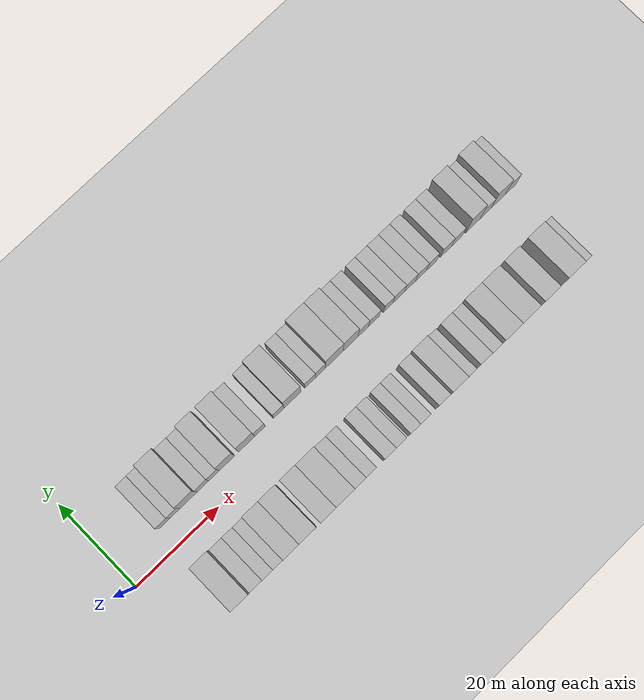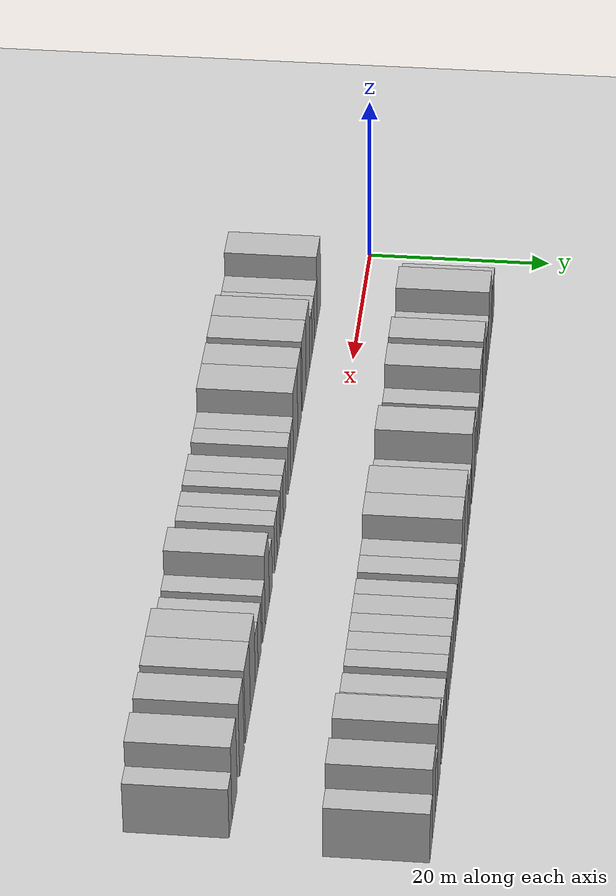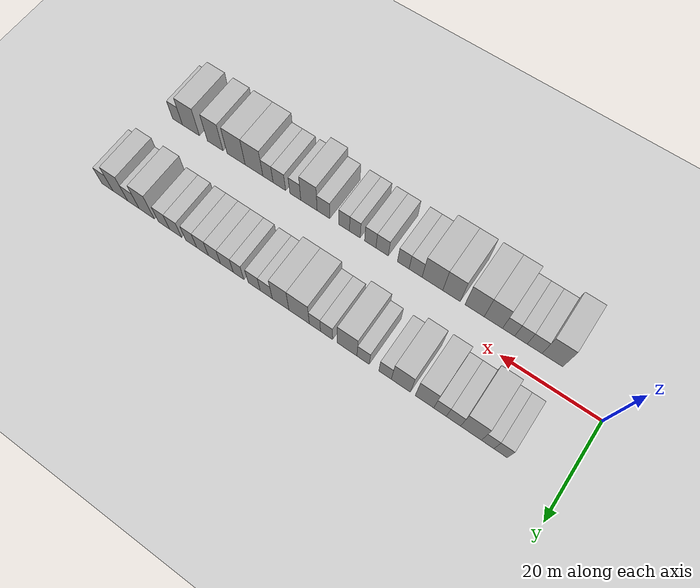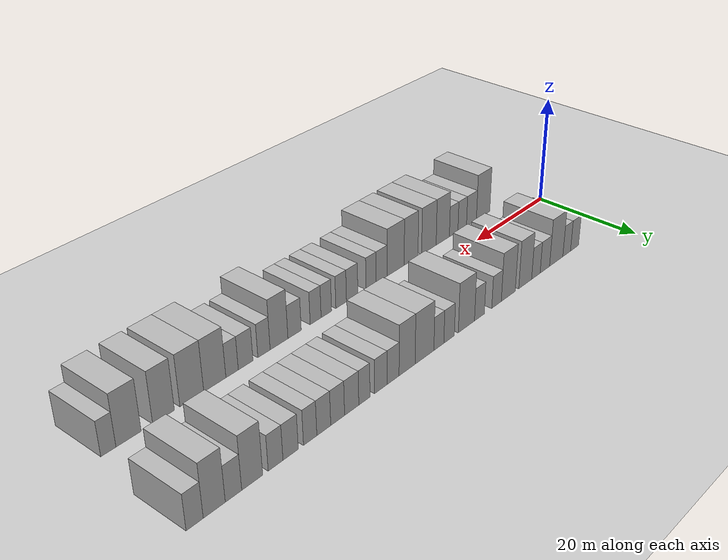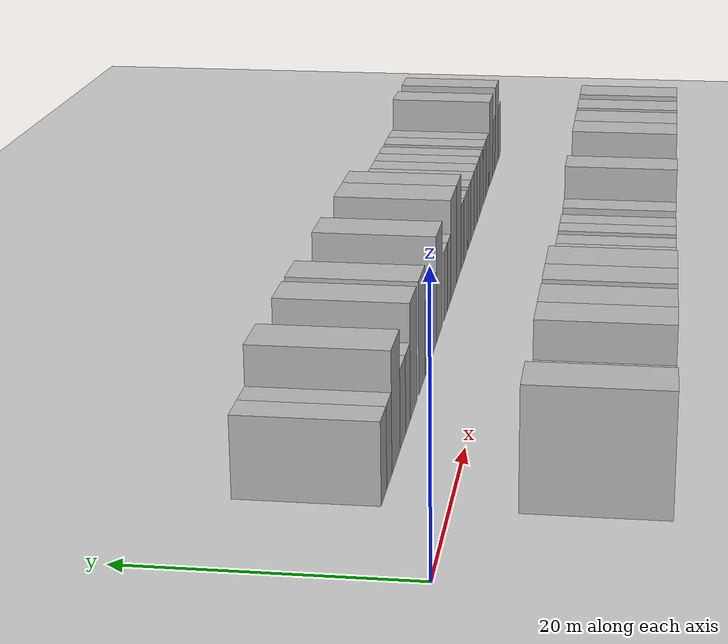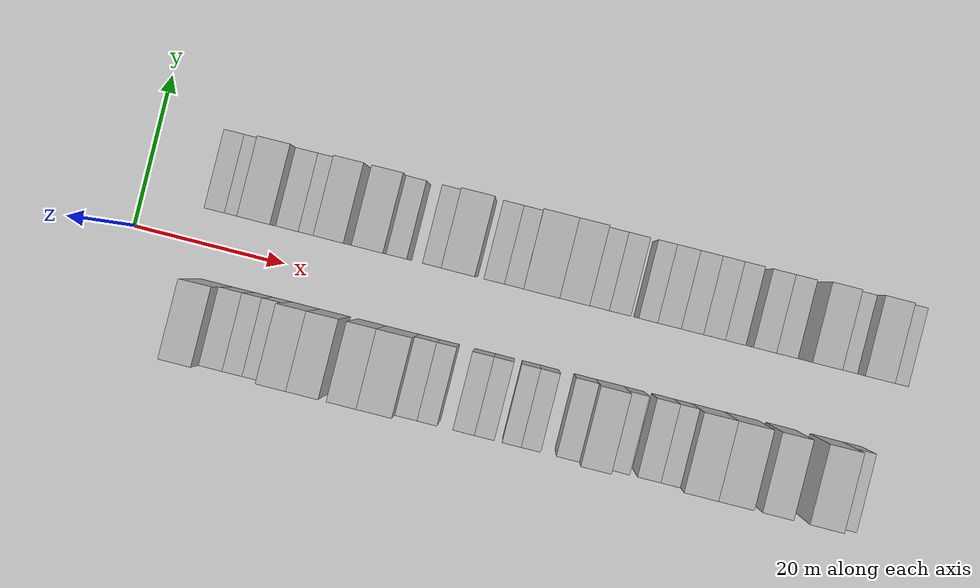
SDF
<sdf version="1.6">
 <world name="default">
  <include><name>ground_plane_1</name><uri>model://HANNAS_ground_plane</uri></include>
  <model name="building_1">
   <static>1</static>
   <pose>11.2882 9.5000 0 0.000000 0.000000 1.570796</pose>
   <link name="link">
    <pose>0 0 3.00 0 0 0</pose>
    <collision name="collision"><geometry><box><size>10.0000 2.5765 6.0000</size></box></geometry></collision>
    <visual name="visual">
     <cast_shadows>0</cast_shadows>
     <geometry><box><size>10.0000 2.5765 6.0000</size></box></geometry>
     <material>
      <script>
       <uri>model://HANNAS_wall/materials/scripts</uri>
       <uri>model://HANNAS_wall/materials/textures</uri>
       <name>vrc/HANNAS_wall</name>
      </script>
     </material>
    </visual>
   </link>
  </model>
  <model name="building_2">
   <static>1</static>
   <pose>13.7909 9.5000 0 0.000000 0.000000 1.570796</pose>
   <link name="link">
    <pose>0 0 3.00 0 0 0</pose>
    <collision name="collision"><geometry><box><size>10.0000 2.4288 6.0000</size></box></geometry></collision>
    <visual name="visual">
     <cast_shadows>0</cast_shadows>
     <geometry><box><size>10.0000 2.4288 6.0000</size></box></geometry>
     <material>
      <script>
       <uri>model://HANNAS_wall/materials/scripts</uri>
       <uri>model://HANNAS_wall/materials/textures</uri>
       <name>vrc/HANNAS_wall</name>
      </script>
     </material>
    </visual>
   </link>
  </model>
  <model name="building_3">
   <static>1</static>
   <pose>17.0592 9.5000 0 0.000000 0.000000 1.570796</pose>
   <link name="link">
    <pose>0 0 4.50 0 0 0</pose>
    <collision name="collision"><geometry><box><size>10.0000 4.1080 9.0000</size></box></geometry></collision>
    <visual name="visual">
     <cast_shadows>0</cast_shadows>
     <geometry><box><size>10.0000 4.1080 9.0000</size></box></geometry>
     <material>
      <script>
       <uri>model://HANNAS_wall/materials/scripts</uri>
       <uri>model://HANNAS_wall/materials/textures</uri>
       <name>vrc/HANNAS_wall</name>
      </script>
     </material>
    </visual>
   </link>
  </model>
  <model name="building_4">
   <static>1</static>
   <pose>20.5396 9.5000 0 0.000000 0.000000 1.570796</pose>
   <link name="link">
    <pose>0 0 3.00 0 0 0</pose>
    <collision name="collision"><geometry><box><size>10.0000 2.8527 6.0000</size></box></geometry></collision>
    <visual name="visual">
     <cast_shadows>0</cast_shadows>
     <geometry><box><size>10.0000 2.8527 6.0000</size></box></geometry>
     <material>
      <script>
       <uri>model://HANNAS_wall/materials/scripts</uri>
       <uri>model://HANNAS_wall/materials/textures</uri>
       <name>vrc/HANNAS_wall</name>
      </script>
     </material>
    </visual>
   </link>
  </model>
  <model name="building_5">
   <static>1</static>
   <pose>23.2264 9.5000 0 0.000000 0.000000 1.570796</pose>
   <link name="link">
    <pose>0 0 3.00 0 0 0</pose>
    <collision name="collision"><geometry><box><size>10.0000 2.5211 6.0000</size></box></geometry></collision>
    <visual name="visual">
     <cast_shadows>0</cast_shadows>
     <geometry><box><size>10.0000 2.5211 6.0000</size></box></geometry>
     <material>
      <script>
       <uri>model://HANNAS_wall/materials/scripts</uri>
       <uri>model://HANNAS_wall/materials/textures</uri>
       <name>vrc/HANNAS_wall</name>
      </script>
     </material>
    </visual>
   </link>
  </model>
  <model name="building_6">
   <static>1</static>
   <pose>26.3644 9.5000 0 0.000000 0.000000 1.570796</pose>
   <link name="link">
    <pose>0 0 4.50 0 0 0</pose>
    <collision name="collision"><geometry><box><size>10.0000 3.7548 9.0000</size></box></geometry></collision>
    <visual name="visual">
     <cast_shadows>0</cast_shadows>
     <geometry><box><size>10.0000 3.7548 9.0000</size></box></geometry>
     <material>
      <script>
       <uri>model://HANNAS_wall/materials/scripts</uri>
       <uri>model://HANNAS_wall/materials/textures</uri>
       <name>vrc/HANNAS_wall</name>
      </script>
     </material>
    </visual>
   </link>
  </model>
  <model name="building_7">
   <static>1</static>
   <pose>31.1983 9.5000 0 0.000000 0.000000 1.570796</pose>
   <link name="link">
    <pose>0 0 4.50 0 0 0</pose>
    <collision name="collision"><geometry><box><size>10.0000 3.9130 9.0000</size></box></geometry></collision>
    <visual name="visual">
     <cast_shadows>0</cast_shadows>
     <geometry><box><size>10.0000 3.9130 9.0000</size></box></geometry>
     <material>
      <script>
       <uri>model://HANNAS_wall/materials/scripts</uri>
       <uri>model://HANNAS_wall/materials/textures</uri>
       <name>vrc/HANNAS_wall</name>
      </script>
     </material>
    </visual>
   </link>
  </model>
  <model name="building_8">
   <static>1</static>
   <pose>34.4615 9.5000 0 0.000000 0.000000 1.570796</pose>
   <link name="link">
    <pose>0 0 3.00 0 0 0</pose>
    <collision name="collision"><geometry><box><size>10.0000 2.6134 6.0000</size></box></geometry></collision>
    <visual name="visual">
     <cast_shadows>0</cast_shadows>
     <geometry><box><size>10.0000 2.6134 6.0000</size></box></geometry>
     <material>
      <script>
       <uri>model://HANNAS_wall/materials/scripts</uri>
       <uri>model://HANNAS_wall/materials/textures</uri>
       <name>vrc/HANNAS_wall</name>
      </script>
     </material>
    </visual>
   </link>
  </model>
  <model name="building_9">
   <static>1</static>
   <pose>39.0749 9.5000 0 0.000000 0.000000 1.570796</pose>
   <link name="link">
    <pose>0 0 3.00 0 0 0</pose>
    <collision name="collision"><geometry><box><size>10.0000 2.6134 6.0000</size></box></geometry></collision>
    <visual name="visual">
     <cast_shadows>0</cast_shadows>
     <geometry><box><size>10.0000 2.6134 6.0000</size></box></geometry>
     <material>
      <script>
       <uri>model://HANNAS_wall/materials/scripts</uri>
       <uri>model://HANNAS_wall/materials/textures</uri>
       <name>vrc/HANNAS_wall</name>
      </script>
     </material>
    </visual>
   </link>
  </model>
  <model name="building_10">
   <static>1</static>
   <pose>42.4751 9.5000 0 0.000000 0.000000 1.570796</pose>
   <link name="link">
    <pose>0 0 4.50 0 0 0</pose>
    <collision name="collision"><geometry><box><size>10.0000 4.1871 9.0000</size></box></geometry></collision>
    <visual name="visual">
     <cast_shadows>0</cast_shadows>
     <geometry><box><size>10.0000 4.1871 9.0000</size></box></geometry>
     <material>
      <script>
       <uri>model://HANNAS_wall/materials/scripts</uri>
       <uri>model://HANNAS_wall/materials/textures</uri>
       <name>vrc/HANNAS_wall</name>
      </script>
     </material>
    </visual>
   </link>
  </model>
  <model name="building_11">
   <static>1</static>
   <pose>46.8850 9.5000 0 0.000000 0.000000 1.570796</pose>
   <link name="link">
    <pose>0 0 3.00 0 0 0</pose>
    <collision name="collision"><geometry><box><size>10.0000 2.6326 6.0000</size></box></geometry></collision>
    <visual name="visual">
     <cast_shadows>0</cast_shadows>
     <geometry><box><size>10.0000 2.6326 6.0000</size></box></geometry>
     <material>
      <script>
       <uri>model://HANNAS_wall/materials/scripts</uri>
       <uri>model://HANNAS_wall/materials/textures</uri>
       <name>vrc/HANNAS_wall</name>
      </script>
     </material>
    </visual>
   </link>
  </model>
  <model name="building_12">
   <static>1</static>
   <pose>49.4207 9.5000 0 0.000000 0.000000 1.570796</pose>
   <link name="link">
    <pose>0 0 3.00 0 0 0</pose>
    <collision name="collision"><geometry><box><size>10.0000 2.4388 6.0000</size></box></geometry></collision>
    <visual name="visual">
     <cast_shadows>0</cast_shadows>
     <geometry><box><size>10.0000 2.4388 6.0000</size></box></geometry>
     <material>
      <script>
       <uri>model://HANNAS_wall/materials/scripts</uri>
       <uri>model://HANNAS_wall/materials/textures</uri>
       <name>vrc/HANNAS_wall</name>
      </script>
     </material>
    </visual>
   </link>
  </model>
  <model name="building_13">
   <static>1</static>
   <pose>52.8807 9.5000 0 0.000000 0.000000 1.570796</pose>
   <link name="link">
    <pose>0 0 4.50 0 0 0</pose>
    <collision name="collision"><geometry><box><size>10.0000 4.4811 9.0000</size></box></geometry></collision>
    <visual name="visual">
     <cast_shadows>0</cast_shadows>
     <geometry><box><size>10.0000 4.4811 9.0000</size></box></geometry>
     <material>
      <script>
       <uri>model://HANNAS_wall/materials/scripts</uri>
       <uri>model://HANNAS_wall/materials/textures</uri>
       <name>vrc/HANNAS_wall</name>
      </script>
     </material>
    </visual>
   </link>
  </model>
  <model name="building_14">
   <static>1</static>
   <pose>56.9827 9.5000 0 0.000000 0.000000 1.570796</pose>
   <link name="link">
    <pose>0 0 4.50 0 0 0</pose>
    <collision name="collision"><geometry><box><size>10.0000 3.7229 9.0000</size></box></geometry></collision>
    <visual name="visual">
     <cast_shadows>0</cast_shadows>
     <geometry><box><size>10.0000 3.7229 9.0000</size></box></geometry>
     <material>
      <script>
       <uri>model://HANNAS_wall/materials/scripts</uri>
       <uri>model://HANNAS_wall/materials/textures</uri>
       <name>vrc/HANNAS_wall</name>
      </script>
     </material>
    </visual>
   </link>
  </model>
  <model name="building_15">
   <static>1</static>
   <pose>60.1953 9.5000 0 0.000000 0.000000 1.570796</pose>
   <link name="link">
    <pose>0 0 3.00 0 0 0</pose>
    <collision name="collision"><geometry><box><size>10.0000 2.7024 6.0000</size></box></geometry></collision>
    <visual name="visual">
     <cast_shadows>0</cast_shadows>
     <geometry><box><size>10.0000 2.7024 6.0000</size></box></geometry>
     <material>
      <script>
       <uri>model://HANNAS_wall/materials/scripts</uri>
       <uri>model://HANNAS_wall/materials/textures</uri>
       <name>vrc/HANNAS_wall</name>
      </script>
     </material>
    </visual>
   </link>
  </model>
  <model name="building_16">
   <static>1</static>
   <pose>62.9244 9.5000 0 0.000000 0.000000 1.570796</pose>
   <link name="link">
    <pose>0 0 3.00 0 0 0</pose>
    <collision name="collision"><geometry><box><size>10.0000 2.7558 6.0000</size></box></geometry></collision>
    <visual name="visual">
     <cast_shadows>0</cast_shadows>
     <geometry><box><size>10.0000 2.7558 6.0000</size></box></geometry>
     <material>
      <script>
       <uri>model://HANNAS_wall/materials/scripts</uri>
       <uri>model://HANNAS_wall/materials/textures</uri>
       <name>vrc/HANNAS_wall</name>
      </script>
     </material>
    </visual>
   </link>
  </model>
  <model name="building_17">
   <static>1</static>
   <pose>66.5044 9.5000 0 0.000000 0.000000 1.570796</pose>
   <link name="link">
    <pose>0 0 3.00 0 0 0</pose>
    <collision name="collision"><geometry><box><size>10.0000 2.4043 6.0000</size></box></geometry></collision>
    <visual name="visual">
     <cast_shadows>0</cast_shadows>
     <geometry><box><size>10.0000 2.4043 6.0000</size></box></geometry>
     <material>
      <script>
       <uri>model://HANNAS_wall/materials/scripts</uri>
       <uri>model://HANNAS_wall/materials/textures</uri>
       <name>vrc/HANNAS_wall</name>
      </script>
     </material>
    </visual>
   </link>
  </model>
  <model name="building_18">
   <static>1</static>
   <pose>69.1993 9.5000 0 0.000000 0.000000 1.570796</pose>
   <link name="link">
    <pose>0 0 3.00 0 0 0</pose>
    <collision name="collision"><geometry><box><size>10.0000 2.9854 6.0000</size></box></geometry></collision>
    <visual name="visual">
     <cast_shadows>0</cast_shadows>
     <geometry><box><size>10.0000 2.9854 6.0000</size></box></geometry>
     <material>
      <script>
       <uri>model://HANNAS_wall/materials/scripts</uri>
       <uri>model://HANNAS_wall/materials/textures</uri>
       <name>vrc/HANNAS_wall</name>
      </script>
     </material>
    </visual>
   </link>
  </model>
  <model name="building_19">
   <static>1</static>
   <pose>72.1082 9.5000 0 0.000000 0.000000 1.570796</pose>
   <link name="link">
    <pose>0 0 3.00 0 0 0</pose>
    <collision name="collision"><geometry><box><size>10.0000 2.8324 6.0000</size></box></geometry></collision>
    <visual name="visual">
     <cast_shadows>0</cast_shadows>
     <geometry><box><size>10.0000 2.8324 6.0000</size></box></geometry>
     <material>
      <script>
       <uri>model://HANNAS_wall/materials/scripts</uri>
       <uri>model://HANNAS_wall/materials/textures</uri>
       <name>vrc/HANNAS_wall</name>
      </script>
     </material>
    </visual>
   </link>
  </model>
  <model name="building_20">
   <static>1</static>
   <pose>74.9135 9.5000 0 0.000000 0.000000 1.570796</pose>
   <link name="link">
    <pose>0 0 3.00 0 0 0</pose>
    <collision name="collision"><geometry><box><size>10.0000 2.7782 6.0000</size></box></geometry></collision>
    <visual name="visual">
     <cast_shadows>0</cast_shadows>
     <geometry><box><size>10.0000 2.7782 6.0000</size></box></geometry>
     <material>
      <script>
       <uri>model://HANNAS_wall/materials/scripts</uri>
       <uri>model://HANNAS_wall/materials/textures</uri>
       <name>vrc/HANNAS_wall</name>
      </script>
     </material>
    </visual>
   </link>
  </model>
  <model name="building_21">
   <static>1</static>
   <pose>77.6071 9.5000 0 0.000000 0.000000 1.570796</pose>
   <link name="link">
    <pose>0 0 3.00 0 0 0</pose>
    <collision name="collision"><geometry><box><size>10.0000 2.6091 6.0000</size></box></geometry></collision>
    <visual name="visual">
     <cast_shadows>0</cast_shadows>
     <geometry><box><size>10.0000 2.6091 6.0000</size></box></geometry>
     <material>
      <script>
       <uri>model://HANNAS_wall/materials/scripts</uri>
       <uri>model://HANNAS_wall/materials/textures</uri>
       <name>vrc/HANNAS_wall</name>
      </script>
     </material>
    </visual>
   </link>
  </model>
  <model name="building_22">
   <static>1</static>
   <pose>81.3599 9.5000 0 0.000000 0.000000 1.570796</pose>
   <link name="link">
    <pose>0 0 3.00 0 0 0</pose>
    <collision name="collision"><geometry><box><size>10.0000 2.8966 6.0000</size></box></geometry></collision>
    <visual name="visual">
     <cast_shadows>0</cast_shadows>
     <geometry><box><size>10.0000 2.8966 6.0000</size></box></geometry>
     <material>
      <script>
       <uri>model://HANNAS_wall/materials/scripts</uri>
       <uri>model://HANNAS_wall/materials/textures</uri>
       <name>vrc/HANNAS_wall</name>
      </script>
     </material>
    </visual>
   </link>
  </model>
  <model name="building_23">
   <static>1</static>
   <pose>84.1726 9.5000 0 0.000000 0.000000 1.570796</pose>
   <link name="link">
    <pose>0 0 3.00 0 0 0</pose>
    <collision name="collision"><geometry><box><size>10.0000 2.7287 6.0000</size></box></geometry></collision>
    <visual name="visual">
     <cast_shadows>0</cast_shadows>
     <geometry><box><size>10.0000 2.7287 6.0000</size></box></geometry>
     <material>
      <script>
       <uri>model://HANNAS_wall/materials/scripts</uri>
       <uri>model://HANNAS_wall/materials/textures</uri>
       <name>vrc/HANNAS_wall</name>
      </script>
     </material>
    </visual>
   </link>
  </model>
  <model name="building_24">
   <static>1</static>
   <pose>88.4007 9.5000 0 0.000000 0.000000 1.570796</pose>
   <link name="link">
    <pose>0 0 4.50 0 0 0</pose>
    <collision name="collision"><geometry><box><size>10.0000 3.7275 9.0000</size></box></geometry></collision>
    <visual name="visual">
     <cast_shadows>0</cast_shadows>
     <geometry><box><size>10.0000 3.7275 9.0000</size></box></geometry>
     <material>
      <script>
       <uri>model://HANNAS_wall/materials/scripts</uri>
       <uri>model://HANNAS_wall/materials/textures</uri>
       <name>vrc/HANNAS_wall</name>
      </script>
     </material>
    </visual>
   </link>
  </model>
  <model name="building_25">
   <static>1</static>
   <pose>91.6844 9.5000 0 0.000000 0.000000 1.570796</pose>
   <link name="link">
    <pose>0 0 3.00 0 0 0</pose>
    <collision name="collision"><geometry><box><size>10.0000 2.8400 6.0000</size></box></geometry></collision>
    <visual name="visual">
     <cast_shadows>0</cast_shadows>
     <geometry><box><size>10.0000 2.8400 6.0000</size></box></geometry>
     <material>
      <script>
       <uri>model://HANNAS_wall/materials/scripts</uri>
       <uri>model://HANNAS_wall/materials/textures</uri>
       <name>vrc/HANNAS_wall</name>
      </script>
     </material>
    </visual>
   </link>
  </model>
  <model name="building_26">
   <static>1</static>
   <pose>94.9504 9.5000 0 0.000000 0.000000 1.570796</pose>
   <link name="link">
    <pose>0 0 4.50 0 0 0</pose>
    <collision name="collision"><geometry><box><size>10.0000 3.6920 9.0000</size></box></geometry></collision>
    <visual name="visual">
     <cast_shadows>0</cast_shadows>
     <geometry><box><size>10.0000 3.6920 9.0000</size></box></geometry>
     <material>
      <script>
       <uri>model://HANNAS_wall/materials/scripts</uri>
       <uri>model://HANNAS_wall/materials/textures</uri>
       <name>vrc/HANNAS_wall</name>
      </script>
     </material>
    </visual>
   </link>
  </model>
  <model name="building_27">
   <static>1</static>
   <pose>98.1973 9.5000 0 0.000000 0.000000 1.570796</pose>
   <link name="link">
    <pose>0 0 3.00 0 0 0</pose>
    <collision name="collision"><geometry><box><size>10.0000 2.8018 6.0000</size></box></geometry></collision>
    <visual name="visual">
     <cast_shadows>0</cast_shadows>
     <geometry><box><size>10.0000 2.8018 6.0000</size></box></geometry>
     <material>
      <script>
       <uri>model://HANNAS_wall/materials/scripts</uri>
       <uri>model://HANNAS_wall/materials/textures</uri>
       <name>vrc/HANNAS_wall</name>
      </script>
     </material>
    </visual>
   </link>
  </model>
  <model name="building_54">
   <static>1</static>
   <pose>12.0558 -9.5000 0 0.000000 0.000000 1.570796</pose>
   <link name="link">
    <pose>0 0 4.50 0 0 0</pose>
    <collision name="collision"><geometry><box><size>10.0000 4.1115 9.0000</size></box></geometry></collision>
    <visual name="visual">
     <cast_shadows>0</cast_shadows>
     <geometry><box><size>10.0000 4.1115 9.0000</size></box></geometry>
     <material>
      <script>
       <uri>model://HANNAS_wall/materials/scripts</uri>
       <uri>model://HANNAS_wall/materials/textures</uri>
       <name>vrc/HANNAS_wall</name>
      </script>
     </material>
    </visual>
   </link>
  </model>
  <model name="building_55">
   <static>1</static>
   <pose>15.6050 -9.5000 0 0.000000 0.000000 1.570796</pose>
   <link name="link">
    <pose>0 0 3.00 0 0 0</pose>
    <collision name="collision"><geometry><box><size>10.0000 2.9869 6.0000</size></box></geometry></collision>
    <visual name="visual">
     <cast_shadows>0</cast_shadows>
     <geometry><box><size>10.0000 2.9869 6.0000</size></box></geometry>
     <material>
      <script>
       <uri>model://HANNAS_wall/materials/scripts</uri>
       <uri>model://HANNAS_wall/materials/textures</uri>
       <name>vrc/HANNAS_wall</name>
      </script>
     </material>
    </visual>
   </link>
  </model>
  <model name="building_56">
   <static>1</static>
   <pose>18.3660 -9.5000 0 0.000000 0.000000 1.570796</pose>
   <link name="link">
    <pose>0 0 3.00 0 0 0</pose>
    <collision name="collision"><geometry><box><size>10.0000 2.5352 6.0000</size></box></geometry></collision>
    <visual name="visual">
     <cast_shadows>0</cast_shadows>
     <geometry><box><size>10.0000 2.5352 6.0000</size></box></geometry>
     <material>
      <script>
       <uri>model://HANNAS_wall/materials/scripts</uri>
       <uri>model://HANNAS_wall/materials/textures</uri>
       <name>vrc/HANNAS_wall</name>
      </script>
     </material>
    </visual>
   </link>
  </model>
  <model name="building_57">
   <static>1</static>
   <pose>20.8775 -9.5000 0 0.000000 0.000000 1.570796</pose>
   <link name="link">
    <pose>0 0 3.00 0 0 0</pose>
    <collision name="collision"><geometry><box><size>10.0000 2.4878 6.0000</size></box></geometry></collision>
    <visual name="visual">
     <cast_shadows>0</cast_shadows>
     <geometry><box><size>10.0000 2.4878 6.0000</size></box></geometry>
     <material>
      <script>
       <uri>model://HANNAS_wall/materials/scripts</uri>
       <uri>model://HANNAS_wall/materials/textures</uri>
       <name>vrc/HANNAS_wall</name>
      </script>
     </material>
    </visual>
   </link>
  </model>
  <model name="building_58">
   <static>1</static>
   <pose>24.0120 -9.5000 0 0.000000 0.000000 1.570796</pose>
   <link name="link">
    <pose>0 0 4.50 0 0 0</pose>
    <collision name="collision"><geometry><box><size>10.0000 3.7812 9.0000</size></box></geometry></collision>
    <visual name="visual">
     <cast_shadows>0</cast_shadows>
     <geometry><box><size>10.0000 3.7812 9.0000</size></box></geometry>
     <material>
      <script>
       <uri>model://HANNAS_wall/materials/scripts</uri>
       <uri>model://HANNAS_wall/materials/textures</uri>
       <name>vrc/HANNAS_wall</name>
      </script>
     </material>
    </visual>
   </link>
  </model>
  <model name="building_59">
   <static>1</static>
   <pose>27.9158 -9.5000 0 0.000000 0.000000 1.570796</pose>
   <link name="link">
    <pose>0 0 4.50 0 0 0</pose>
    <collision name="collision"><geometry><box><size>10.0000 4.0264 9.0000</size></box></geometry></collision>
    <visual name="visual">
     <cast_shadows>0</cast_shadows>
     <geometry><box><size>10.0000 4.0264 9.0000</size></box></geometry>
     <material>
      <script>
       <uri>model://HANNAS_wall/materials/scripts</uri>
       <uri>model://HANNAS_wall/materials/textures</uri>
       <name>vrc/HANNAS_wall</name>
      </script>
     </material>
    </visual>
   </link>
  </model>
  <model name="building_60">
   <static>1</static>
   <pose>32.7808 -9.5000 0 0.000000 0.000000 1.570796</pose>
   <link name="link">
    <pose>0 0 4.50 0 0 0</pose>
    <collision name="collision"><geometry><box><size>10.0000 3.7036 9.0000</size></box></geometry></collision>
    <visual name="visual">
     <cast_shadows>0</cast_shadows>
     <geometry><box><size>10.0000 3.7036 9.0000</size></box></geometry>
     <material>
      <script>
       <uri>model://HANNAS_wall/materials/scripts</uri>
       <uri>model://HANNAS_wall/materials/textures</uri>
       <name>vrc/HANNAS_wall</name>
      </script>
     </material>
    </visual>
   </link>
  </model>
  <model name="building_61">
   <static>1</static>
   <pose>36.8572 -9.5000 0 0.000000 0.000000 1.570796</pose>
   <link name="link">
    <pose>0 0 4.50 0 0 0</pose>
    <collision name="collision"><geometry><box><size>10.0000 4.4492 9.0000</size></box></geometry></collision>
    <visual name="visual">
     <cast_shadows>0</cast_shadows>
     <geometry><box><size>10.0000 4.4492 9.0000</size></box></geometry>
     <material>
      <script>
       <uri>model://HANNAS_wall/materials/scripts</uri>
       <uri>model://HANNAS_wall/materials/textures</uri>
       <name>vrc/HANNAS_wall</name>
      </script>
     </material>
    </visual>
   </link>
  </model>
  <model name="building_62">
   <static>1</static>
   <pose>40.4895 -9.5000 0 0.000000 0.000000 1.570796</pose>
   <link name="link">
    <pose>0 0 3.00 0 0 0</pose>
    <collision name="collision"><geometry><box><size>10.0000 2.8154 6.0000</size></box></geometry></collision>
    <visual name="visual">
     <cast_shadows>0</cast_shadows>
     <geometry><box><size>10.0000 2.8154 6.0000</size></box></geometry>
     <material>
      <script>
       <uri>model://HANNAS_wall/materials/scripts</uri>
       <uri>model://HANNAS_wall/materials/textures</uri>
       <name>vrc/HANNAS_wall</name>
      </script>
     </material>
    </visual>
   </link>
  </model>
  <model name="building_63">
   <static>1</static>
   <pose>43.1748 -9.5000 0 0.000000 0.000000 1.570796</pose>
   <link name="link">
    <pose>0 0 3.00 0 0 0</pose>
    <collision name="collision"><geometry><box><size>10.0000 2.5553 6.0000</size></box></geometry></collision>
    <visual name="visual">
     <cast_shadows>0</cast_shadows>
     <geometry><box><size>10.0000 2.5553 6.0000</size></box></geometry>
     <material>
      <script>
       <uri>model://HANNAS_wall/materials/scripts</uri>
       <uri>model://HANNAS_wall/materials/textures</uri>
       <name>vrc/HANNAS_wall</name>
      </script>
     </material>
    </visual>
   </link>
  </model>
  <model name="building_64">
   <static>1</static>
   <pose>47.8305 -9.5000 0 0.000000 0.000000 1.570796</pose>
   <link name="link">
    <pose>0 0 3.00 0 0 0</pose>
    <collision name="collision"><geometry><box><size>10.0000 2.7560 6.0000</size></box></geometry></collision>
    <visual name="visual">
     <cast_shadows>0</cast_shadows>
     <geometry><box><size>10.0000 2.7560 6.0000</size></box></geometry>
     <material>
      <script>
       <uri>model://HANNAS_wall/materials/scripts</uri>
       <uri>model://HANNAS_wall/materials/textures</uri>
       <name>vrc/HANNAS_wall</name>
      </script>
     </material>
    </visual>
   </link>
  </model>
  <model name="building_65">
   <static>1</static>
   <pose>50.4754 -9.5000 0 0.000000 0.000000 1.570796</pose>
   <link name="link">
    <pose>0 0 3.00 0 0 0</pose>
    <collision name="collision"><geometry><box><size>10.0000 2.5339 6.0000</size></box></geometry></collision>
    <visual name="visual">
     <cast_shadows>0</cast_shadows>
     <geometry><box><size>10.0000 2.5339 6.0000</size></box></geometry>
     <material>
      <script>
       <uri>model://HANNAS_wall/materials/scripts</uri>
       <uri>model://HANNAS_wall/materials/textures</uri>
       <name>vrc/HANNAS_wall</name>
      </script>
     </material>
    </visual>
   </link>
  </model>
  <model name="building_66">
   <static>1</static>
   <pose>53.9498 -9.5000 0 0.000000 0.000000 1.570796</pose>
   <link name="link">
    <pose>0 0 3.00 0 0 0</pose>
    <collision name="collision"><geometry><box><size>10.0000 2.4150 6.0000</size></box></geometry></collision>
    <visual name="visual">
     <cast_shadows>0</cast_shadows>
     <geometry><box><size>10.0000 2.4150 6.0000</size></box></geometry>
     <material>
      <script>
       <uri>model://HANNAS_wall/materials/scripts</uri>
       <uri>model://HANNAS_wall/materials/textures</uri>
       <name>vrc/HANNAS_wall</name>
      </script>
     </material>
    </visual>
   </link>
  </model>
  <model name="building_67">
   <static>1</static>
   <pose>56.4027 -9.5000 0 0.000000 0.000000 1.570796</pose>
   <link name="link">
    <pose>0 0 3.00 0 0 0</pose>
    <collision name="collision"><geometry><box><size>10.0000 2.4907 6.0000</size></box></geometry></collision>
    <visual name="visual">
     <cast_shadows>0</cast_shadows>
     <geometry><box><size>10.0000 2.4907 6.0000</size></box></geometry>
     <material>
      <script>
       <uri>model://HANNAS_wall/materials/scripts</uri>
       <uri>model://HANNAS_wall/materials/textures</uri>
       <name>vrc/HANNAS_wall</name>
      </script>
     </material>
    </visual>
   </link>
  </model>
  <model name="building_68">
   <static>1</static>
   <pose>61.1142 -9.5000 0 0.000000 0.000000 1.570796</pose>
   <link name="link">
    <pose>0 0 3.00 0 0 0</pose>
    <collision name="collision"><geometry><box><size>10.0000 2.9322 6.0000</size></box></geometry></collision>
    <visual name="visual">
     <cast_shadows>0</cast_shadows>
     <geometry><box><size>10.0000 2.9322 6.0000</size></box></geometry>
     <material>
      <script>
       <uri>model://HANNAS_wall/materials/scripts</uri>
       <uri>model://HANNAS_wall/materials/textures</uri>
       <name>vrc/HANNAS_wall</name>
      </script>
     </material>
    </visual>
   </link>
  </model>
  <model name="building_69">
   <static>1</static>
   <pose>64.4834 -9.5000 0 0.000000 0.000000 1.570796</pose>
   <link name="link">
    <pose>0 0 4.50 0 0 0</pose>
    <collision name="collision"><geometry><box><size>10.0000 3.8063 9.0000</size></box></geometry></collision>
    <visual name="visual">
     <cast_shadows>0</cast_shadows>
     <geometry><box><size>10.0000 3.8063 9.0000</size></box></geometry>
     <material>
      <script>
       <uri>model://HANNAS_wall/materials/scripts</uri>
       <uri>model://HANNAS_wall/materials/textures</uri>
       <name>vrc/HANNAS_wall</name>
      </script>
     </material>
    </visual>
   </link>
  </model>
  <model name="building_70">
   <static>1</static>
   <pose>67.6747 -9.5000 0 0.000000 0.000000 1.570796</pose>
   <link name="link">
    <pose>0 0 3.00 0 0 0</pose>
    <collision name="collision"><geometry><box><size>10.0000 2.5763 6.0000</size></box></geometry></collision>
    <visual name="visual">
     <cast_shadows>0</cast_shadows>
     <geometry><box><size>10.0000 2.5763 6.0000</size></box></geometry>
     <material>
      <script>
       <uri>model://HANNAS_wall/materials/scripts</uri>
       <uri>model://HANNAS_wall/materials/textures</uri>
       <name>vrc/HANNAS_wall</name>
      </script>
     </material>
    </visual>
   </link>
  </model>
  <model name="building_71">
   <static>1</static>
   <pose>71.4519 -9.5000 0 0.000000 0.000000 1.570796</pose>
   <link name="link">
    <pose>0 0 3.00 0 0 0</pose>
    <collision name="collision"><geometry><box><size>10.0000 2.9781 6.0000</size></box></geometry></collision>
    <visual name="visual">
     <cast_shadows>0</cast_shadows>
     <geometry><box><size>10.0000 2.9781 6.0000</size></box></geometry>
     <material>
      <script>
       <uri>model://HANNAS_wall/materials/scripts</uri>
       <uri>model://HANNAS_wall/materials/textures</uri>
       <name>vrc/HANNAS_wall</name>
      </script>
     </material>
    </visual>
   </link>
  </model>
  <model name="building_72">
   <static>1</static>
   <pose>74.1728 -9.5000 0 0.000000 0.000000 1.570796</pose>
   <link name="link">
    <pose>0 0 3.00 0 0 0</pose>
    <collision name="collision"><geometry><box><size>10.0000 2.4637 6.0000</size></box></geometry></collision>
    <visual name="visual">
     <cast_shadows>0</cast_shadows>
     <geometry><box><size>10.0000 2.4637 6.0000</size></box></geometry>
     <material>
      <script>
       <uri>model://HANNAS_wall/materials/scripts</uri>
       <uri>model://HANNAS_wall/materials/textures</uri>
       <name>vrc/HANNAS_wall</name>
      </script>
     </material>
    </visual>
   </link>
  </model>
  <model name="building_73">
   <static>1</static>
   <pose>77.5475 -9.5000 0 0.000000 0.000000 1.570796</pose>
   <link name="link">
    <pose>0 0 4.50 0 0 0</pose>
    <collision name="collision"><geometry><box><size>10.0000 4.2856 9.0000</size></box></geometry></collision>
    <visual name="visual">
     <cast_shadows>0</cast_shadows>
     <geometry><box><size>10.0000 4.2856 9.0000</size></box></geometry>
     <material>
      <script>
       <uri>model://HANNAS_wall/materials/scripts</uri>
       <uri>model://HANNAS_wall/materials/textures</uri>
       <name>vrc/HANNAS_wall</name>
      </script>
     </material>
    </visual>
   </link>
  </model>
  <model name="building_74">
   <static>1</static>
   <pose>81.9178 -9.5000 0 0.000000 0.000000 1.570796</pose>
   <link name="link">
    <pose>0 0 4.50 0 0 0</pose>
    <collision name="collision"><geometry><box><size>10.0000 4.4550 9.0000</size></box></geometry></collision>
    <visual name="visual">
     <cast_shadows>0</cast_shadows>
     <geometry><box><size>10.0000 4.4550 9.0000</size></box></geometry>
     <material>
      <script>
       <uri>model://HANNAS_wall/materials/scripts</uri>
       <uri>model://HANNAS_wall/materials/textures</uri>
       <name>vrc/HANNAS_wall</name>
      </script>
     </material>
    </visual>
   </link>
  </model>
  <model name="building_75">
   <static>1</static>
   <pose>87.0956 -9.5000 0 0.000000 0.000000 1.570796</pose>
   <link name="link">
    <pose>0 0 4.50 0 0 0</pose>
    <collision name="collision"><geometry><box><size>10.0000 3.9005 9.0000</size></box></geometry></collision>
    <visual name="visual">
     <cast_shadows>0</cast_shadows>
     <geometry><box><size>10.0000 3.9005 9.0000</size></box></geometry>
     <material>
      <script>
       <uri>model://HANNAS_wall/materials/scripts</uri>
       <uri>model://HANNAS_wall/materials/textures</uri>
       <name>vrc/HANNAS_wall</name>
      </script>
     </material>
    </visual>
   </link>
  </model>
  <model name="building_76">
   <static>1</static>
   <pose>93.1889 -9.5000 0 0.000000 0.000000 1.570796</pose>
   <link name="link">
    <pose>0 0 4.50 0 0 0</pose>
    <collision name="collision"><geometry><box><size>10.0000 4.2862 9.0000</size></box></geometry></collision>
    <visual name="visual">
     <cast_shadows>0</cast_shadows>
     <geometry><box><size>10.0000 4.2862 9.0000</size></box></geometry>
     <material>
      <script>
       <uri>model://HANNAS_wall/materials/scripts</uri>
       <uri>model://HANNAS_wall/materials/textures</uri>
       <name>vrc/HANNAS_wall</name>
      </script>
     </material>
    </visual>
   </link>
  </model>
  <model name="building_77">
   <static>1</static>
   <pose>96.5912 -9.5000 0 0.000000 0.000000 1.570796</pose>
   <link name="link">
    <pose>0 0 3.00 0 0 0</pose>
    <collision name="collision"><geometry><box><size>10.0000 2.5184 6.0000</size></box></geometry></collision>
    <visual name="visual">
     <cast_shadows>0</cast_shadows>
     <geometry><box><size>10.0000 2.5184 6.0000</size></box></geometry>
     <material>
      <script>
       <uri>model://HANNAS_wall/materials/scripts</uri>
       <uri>model://HANNAS_wall/materials/textures</uri>
       <name>vrc/HANNAS_wall</name>
      </script>
     </material>
    </visual>
   </link>
  </model>
 </world>
</sdf>
